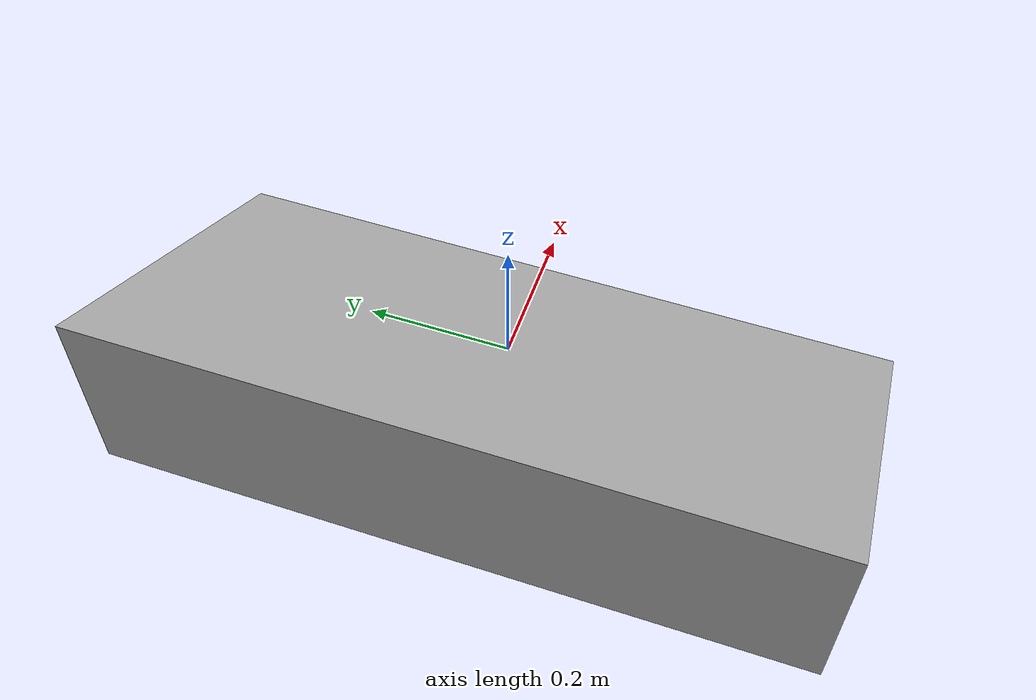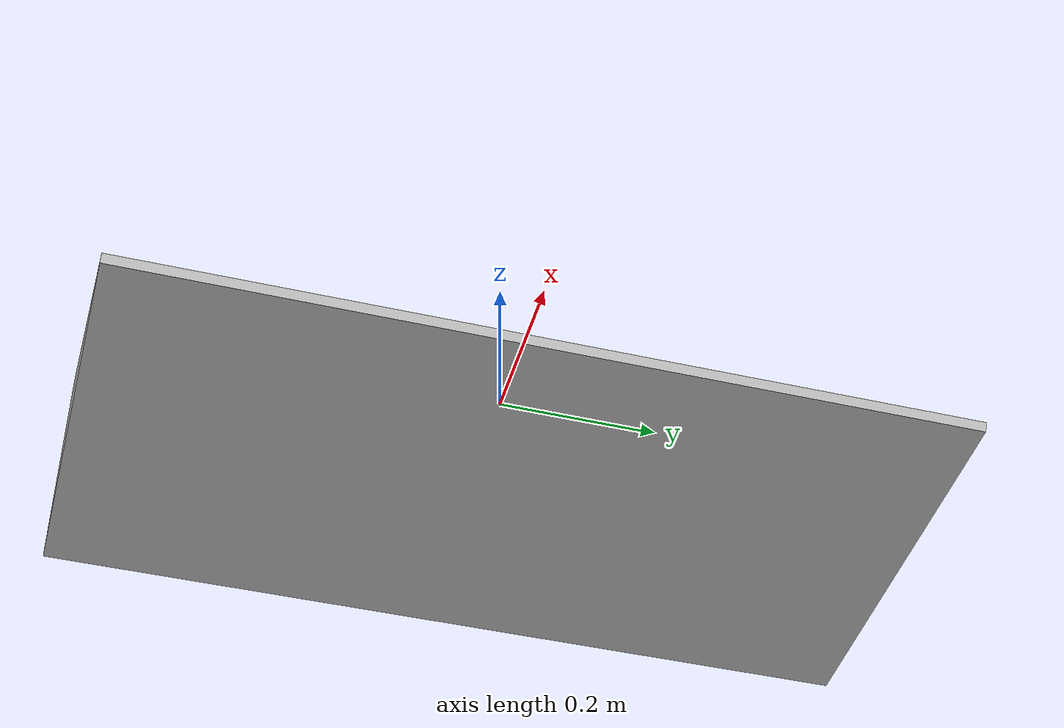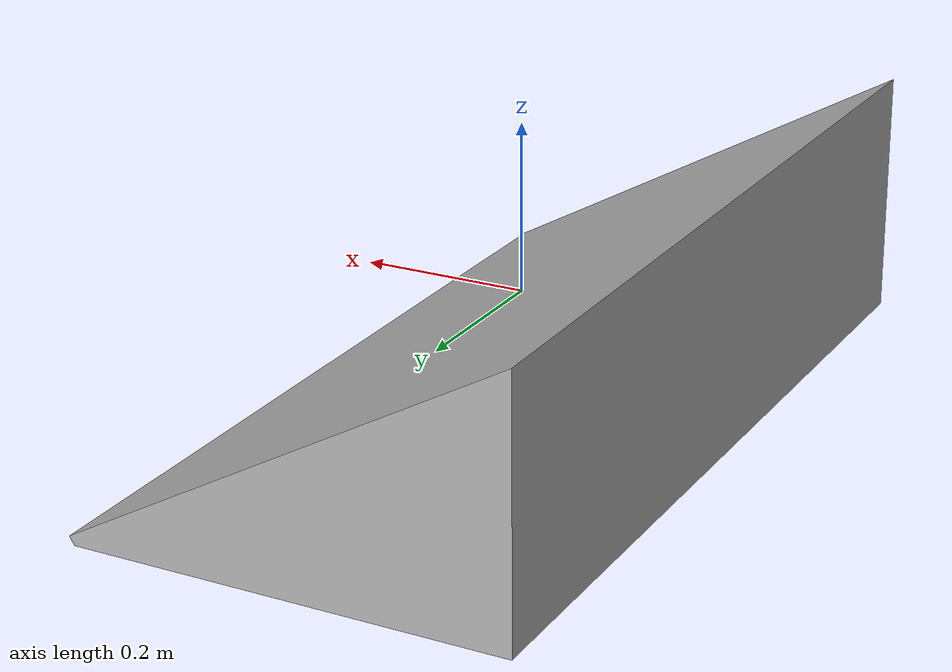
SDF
<?xml version="1.0" encoding="UTF-8" ?>
<sdf version="1.4">
  <!--Generated by blend2world.py-->
    <model name="ramp">
      <pose>0.0 0.0 0.0  0.0 0.0 0.0</pose>
      <static>true</static>
      <link name="body">
        <collision name="collision">
          <geometry>
            <mesh>
              <uri>model://ramp/meshes/ramp.dae</uri>
              <scale>1 1 1</scale>
            </mesh>
          </geometry>
        </collision>
        <visual name="visual">
          <geometry>
            <mesh>
              <uri>model://ramp/meshes/ramp.dae</uri>
              <scale>1 1 1</scale>
            </mesh>
          </geometry>
	  <material>
            <script>
              <uri>model://ramp/textures/chipboard.jpg</uri>
            </script>
          </material>
        </visual>
      </link>
    </model>
</sdf>
